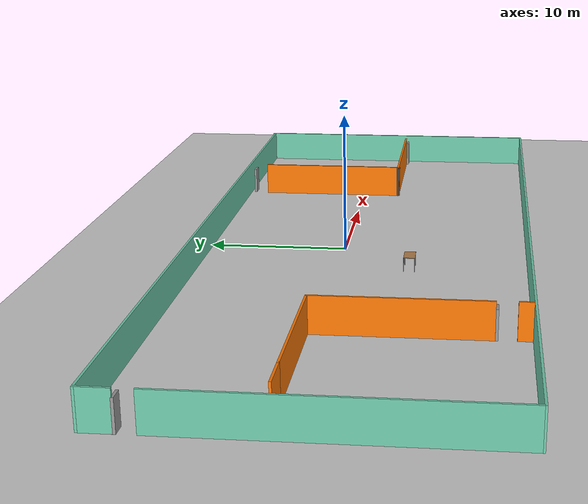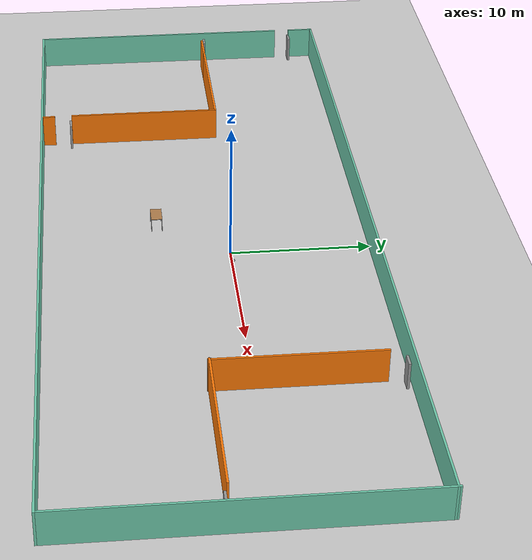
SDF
<sdf version="1.6">
 <world name="default">
  <plugin name="hello" filename="libhello.so"/>
  <light name="sun" type="directional">
   <pose>0 0 10 0 -0 0</pose>
   <diffuse>0.8 0.8 0.8 1</diffuse>
   <specular>0.2 0.2 0.2 1</specular>
   <attenuation>
    <range>1000</range>
    <constant>0.9</constant>
    <linear>0.01</linear>
    <quadratic>0.001</quadratic>
   </attenuation>
   <direction>-0.5 0.1 -0.9</direction>
  </light>
  <model name="ground_plane">
   <static>1</static>
   <link name="link">
    <collision name="collision">
     <geometry><plane><normal>0 0 1</normal><size>100 100</size></plane></geometry>
     <surface>
      <contact><collide_bitmask>65535</collide_bitmask></contact>
      <friction><ode><mu>100</mu><mu2>50</mu2></ode></friction>
     </surface>
    </collision>
    <visual name="visual">
     <cast_shadows>0</cast_shadows>
     <geometry><plane><normal>0 0 1</normal><size>100 100</size></plane></geometry>
     <material>
      <script><uri>file://media/materials/scripts/gazebo.material</uri><name>Gazebo/Grey</name></script>
     </material>
    </visual>
   </link>
  </model>
  <gravity>0 0 -9.8</gravity>
  <magnetic_field>6e-06 2.3e-05 -4.2e-05</magnetic_field>
  <atmosphere type="adiabatic"/>
  <physics name="default_physics" default="0" type="ode">
   <max_step_size>0.001</max_step_size>
   <real_time_factor>1</real_time_factor>
   <real_time_update_rate>1000</real_time_update_rate>
  </physics>
  <scene><ambient>0.4 0.4 0.4 1</ambient><background>0.7 0.7 0.7 1</background><shadows>1</shadows></scene>
  <spherical_coordinates>
   <surface_model>EARTH_WGS84</surface_model>
   <latitude_deg>0</latitude_deg>
   <longitude_deg>0</longitude_deg>
   <elevation>0</elevation>
   <heading_deg>0</heading_deg>
  </spherical_coordinates>
  <model name="Building">
   <pose>-1.11028 -1.8145 0 0 -0 0</pose>
   <link name="Door_0">
    <collision name="Door_0_Collision">
     <geometry><box><size>0.9 0.17 2</size></box></geometry>
     <pose>0 0 1 0 -0 0</pose>
    </collision>
    <visual name="Door_0_Visual">
     <pose>0 0 1 0 -0 0</pose>
     <geometry><box><size>0.9 0.17 2</size></box></geometry>
     <material>
      <script><uri>file://media/materials/scripts/gazebo.material</uri><name>Gazebo/Grey</name></script>
     </material>
    </visual>
    <pose>-28.7575 9.84664 0 0 -0 0</pose>
   </link>
   <link name="Door_1">
    <collision name="Door_1_Collision">
     <geometry><box><size>0.9 0.17 2</size></box></geometry>
     <pose>0 0 1 0 -0 0</pose>
    </collision>
    <visual name="Door_1_Visual">
     <pose>0 0 1 0 -0 0</pose>
     <geometry><box><size>0.9 0.17 2</size></box></geometry>
     <material>
      <script><uri>file://media/materials/scripts/gazebo.material</uri><name>Gazebo/Grey</name></script>
     </material>
    </visual>
    <pose>-15.1147 -9.07776 0 0 -0 0</pose>
   </link>
   <link name="Door_2">
    <collision name="Door_2_Collision">
     <geometry><box><size>0.9 0.17 2</size></box></geometry>
     <pose>0 0 1 0 -0 0</pose>
    </collision>
    <visual name="Door_2_Visual">
     <pose>0 0 1 0 -0 0</pose>
     <geometry><box><size>0.9 0.17 2</size></box></geometry>
     <material>
      <script><uri>file://media/materials/scripts/gazebo.material</uri><name>Gazebo/Grey</name></script>
     </material>
    </visual>
    <pose>-28.5663 2.5444 0 0 -0 0</pose>
   </link>
   <link name="Door_4">
    <collision name="Door_4_Collision">
     <geometry><box><size>0.9 0.17 2</size></box></geometry>
     <pose>0 0 1 0 -0 0</pose>
    </collision>
    <visual name="Door_4_Visual">
     <pose>0 0 1 0 -0 0</pose>
     <geometry><box><size>0.9 0.17 2</size></box></geometry>
     <material>
      <script><uri>file://media/materials/scripts/gazebo.material</uri><name>Gazebo/Grey</name></script>
     </material>
    </visual>
    <pose>28.2667 -1.23216 0 0 -0 0</pose>
   </link>
   <link name="Door_5">
    <collision name="Door_5_Collision">
     <geometry><box><size>0.9 0.17 2</size></box></geometry>
     <pose>0 0 1 0 -0 0</pose>
    </collision>
    <visual name="Door_5_Visual">
     <pose>0 0 1 0 -0 0</pose>
     <geometry><box><size>0.9 0.17 2</size></box></geometry>
     <material>
      <script><uri>file://media/materials/scripts/gazebo.material</uri><name>Gazebo/Grey</name></script>
     </material>
    </visual>
    <pose>16.8813 11.3908 0 0 -0 0</pose>
   </link>
   <link name="Wall_0">
    <collision name="Wall_0_Collision">
     <geometry><box><size>19.8005 0.15 2.5</size></box></geometry>
     <pose>0 0 1.25 0 -0 0</pose>
    </collision>
    <visual name="Wall_0_Visual">
     <pose>0 0 1.25 0 -0 0</pose>
     <geometry><box><size>19.8005 0.15 2.5</size></box></geometry>
     <material>
      <script><uri>file://media/materials/scripts/gazebo.material</uri><name>Gazebo/Grey</name></script>
      <ambient>0.435294 0.796078 0.67451 1</ambient>
     </material>
     <meta><layer>0</layer></meta>
    </visual>
    <pose>-29.1106 -1.17691 0 0 0 -1.5708</pose>
   </link>
   <link name="Wall_1">
    <collision name="Wall_1_Collision">
     <geometry><box><size>58.3767 0.15 2.5</size></box></geometry>
     <pose>0 0 1.25 0 -0 0</pose>
    </collision>
    <visual name="Wall_1_Visual">
     <pose>0 0 1.25 0 -0 0</pose>
     <geometry><box><size>58.3767 0.15 2.5</size></box></geometry>
     <material>
      <script><uri>file://media/materials/scripts/gazebo.material</uri><name>Gazebo/Grey</name></script>
      <ambient>0.435294 0.796078 0.67451 1</ambient>
     </material>
     <meta><layer>0</layer></meta>
    </visual>
    <pose>0 -11.524 0 0 0 -0.013673</pose>
   </link>
   <link name="Wall_12">
    <collision name="Wall_12_Collision">
     <geometry><box><size>2.5 0.15 2.5</size></box></geometry>
     <pose>0 0 1.25 0 -0 0</pose>
    </collision>
    <visual name="Wall_12_Visual">
     <pose>0 0 1.25 0 -0 0</pose>
     <geometry><box><size>2.5 0.15 2.5</size></box></geometry>
     <material>
      <script><uri>file://media/materials/scripts/gazebo.material</uri><name>Gazebo/Grey</name></script>
      <ambient>0.996078 0.47451 0.0196078 1</ambient>
     </material>
     <meta><layer>0</layer></meta>
    </visual>
    <pose>-26.5095 2.28662 0 0 -0 3.14159</pose>
   </link>
   <link name="Wall_14">
    <collision name="Wall_14_Collision">
     <geometry><box><size>0.25 0.15 2.5</size></box></geometry>
     <pose>0 0 1.25 0 -0 0</pose>
    </collision>
    <visual name="Wall_14_Visual">
     <pose>0 0 1.25 0 -0 0</pose>
     <geometry><box><size>0.25 0.15 2.5</size></box></geometry>
     <material>
      <script><uri>file://media/materials/scripts/gazebo.material</uri><name>Gazebo/Grey</name></script>
      <ambient>1 1 1 1</ambient>
     </material>
     <meta><layer>0</layer></meta>
    </visual>
    <pose>16.343 -1.08341 0 0 -0 2.61799</pose>
   </link>
   <link name="Wall_15">
    <collision name="Wall_15_Collision">
     <geometry><box><size>11.5 0.15 2.5</size></box></geometry>
     <pose>0 0 1.25 0 -0 0</pose>
    </collision>
    <visual name="Wall_15_Visual">
     <pose>0 0 1.25 0 -0 0</pose>
     <geometry><box><size>11.5 0.15 2.5</size></box></geometry>
     <material>
      <script><uri>file://media/materials/scripts/gazebo.material</uri><name>Gazebo/Grey</name></script>
      <ambient>0.996078 0.47451 0.0196078 1</ambient>
     </material>
     <meta><layer>0</layer></meta>
    </visual>
    <pose>21.9747 -1.05841 0 0 -0 0</pose>
   </link>
   <link name="Wall_17">
    <collision name="Wall_17_Collision">
     <geometry><box><size>11.5 0.15 2.5</size></box></geometry>
     <pose>0 0 1.25 0 -0 0</pose>
    </collision>
    <visual name="Wall_17_Visual">
     <pose>0 0 1.25 0 -0 0</pose>
     <geometry><box><size>11.5 0.15 2.5</size></box></geometry>
     <material>
      <script><uri>file://media/materials/scripts/gazebo.material</uri><name>Gazebo/Grey</name></script>
      <ambient>0.996078 0.47451 0.0196078 1</ambient>
     </material>
     <meta><layer>0</layer></meta>
    </visual>
    <pose>16.3863 4.56659 0 0 -0 1.5708</pose>
   </link>
   <link name="Wall_2">
    <collision name="Wall_2_Collision">
     <geometry><box><size>23.8713 0.15 2.5</size></box></geometry>
     <pose>0 0 1.25 0 -0 0</pose>
    </collision>
    <visual name="Wall_2_Visual">
     <pose>0 0 1.25 0 -0 0</pose>
     <geometry><box><size>23.8713 0.15 2.5</size></box></geometry>
     <material>
      <script><uri>file://media/materials/scripts/gazebo.material</uri><name>Gazebo/Grey</name></script>
      <ambient>0.435294 0.796078 0.67451 1</ambient>
     </material>
     <meta><layer>0</layer></meta>
    </visual>
    <pose>29.1106 0.062386 0 0 -0 1.5708</pose>
   </link>
   <link name="Wall_3">
    <collision name="Wall_3_Collision">
     <geometry><box><size>58.3714 0.15 2.5</size></box></geometry>
     <pose>0 0 1.25 0 -0 0</pose>
    </collision>
    <visual name="Wall_3_Visual">
     <pose>0 0 1.25 0 -0 0</pose>
     <geometry><box><size>58.3714 0.15 2.5</size></box></geometry>
     <material>
      <script><uri>file://media/materials/scripts/gazebo.material</uri><name>Gazebo/Grey</name></script>
      <ambient>0.435294 0.796078 0.67451 1</ambient>
     </material>
     <meta><layer>0</layer></meta>
    </visual>
    <pose>0 11.7993 0 0 -0 3.14159</pose>
   </link>
   <link name="Wall_4">
    <collision name="Wall_4_Collision">
     <geometry><box><size>2 0.15 2.5</size></box></geometry>
     <pose>0 0 1.25 0 -0 0</pose>
    </collision>
    <visual name="Wall_4_Visual">
     <pose>0 0 1.25 0 -0 0</pose>
     <geometry><box><size>2 0.15 2.5</size></box></geometry>
     <material>
      <script><uri>file://media/materials/scripts/gazebo.material</uri><name>Gazebo/Grey</name></script>
      <ambient>0.435294 0.796078 0.67451 1</ambient>
     </material>
     <meta><layer>0</layer></meta>
    </visual>
    <pose>-29.1106 10.8743 0 0 0 -1.5708</pose>
   </link>
   <link name="Wall_6">
    <collision name="Wall_6_Collision">
     <geometry><box><size>10 0.15 2.5</size></box></geometry>
     <pose>0 0 1.25 0 -0 0</pose>
    </collision>
    <visual name="Wall_6_Visual">
     <pose>0 0 1.25 0 -0 0</pose>
     <geometry><box><size>10 0.15 2.5</size></box></geometry>
     <material>
      <script><uri>file://media/materials/scripts/gazebo.material</uri><name>Gazebo/Grey</name></script>
      <ambient>0.996078 0.47451 0.0196078 1</ambient>
     </material>
     <meta><layer>0</layer></meta>
    </visual>
    <pose>-20.4095 2.28662 0 0 -0 0</pose>
   </link>
   <link name="Wall_7">
    <collision name="Wall_7_Collision">
     <geometry><box><size>11.3585 0.15 2.5</size></box></geometry>
     <pose>0 0 1.25 0 -0 0</pose>
    </collision>
    <visual name="Wall_7_Visual">
     <pose>0 0 1.25 0 -0 0</pose>
     <geometry><box><size>11.3585 0.15 2.5</size></box></geometry>
     <material>
      <script><uri>file://media/materials/scripts/gazebo.material</uri><name>Gazebo/Grey</name></script>
      <ambient>0.996078 0.47451 0.0196078 1</ambient>
     </material>
     <meta><layer>0</layer></meta>
    </visual>
    <pose>-15.4845 -3.31763 0 0 0 -1.5708</pose>
   </link>
   <link name="Wall_9">
    <collision name="Wall_9_Collision">
     <geometry><box><size>1 0.15 2.5</size></box></geometry>
     <pose>0 0 1.25 0 -0 0</pose>
    </collision>
    <visual name="Wall_9_Visual">
     <pose>0 0 1.25 0 -0 0</pose>
     <geometry><box><size>1 0.15 2.5</size></box></geometry>
     <material>
      <script><uri>file://media/materials/scripts/gazebo.material</uri><name>Gazebo/Grey</name></script>
      <ambient>0.996078 0.47451 0.0196078 1</ambient>
     </material>
     <meta><layer>0</layer></meta>
    </visual>
    <pose>-15.4375 -10.805 0 0 -0 1.5708</pose>
   </link>
   <static>1</static>
  </model>
  <model name="table">
   <static>0</static>
   <link name="link">
    <collision name="surface">
     <pose>0 0 1 0 -0 0</pose>
     <geometry><box><size>1.5 0.8 0.03</size></box></geometry>
     <surface><friction><ode><mu>0.6</mu><mu2>0.6</mu2></ode></friction></surface>
    </collision>
    <visual name="visual1">
     <pose>0 0 1 0 -0 0</pose>
     <geometry><box><size>1.4 0.8 0.04</size></box></geometry>
     <material>
      <script><uri>file://media/materials/scripts/gazebo.material</uri><name>Gazebo/Wood</name></script>
     </material>
    </visual>
    <collision name="front_left_leg">
     <pose>0.68 0.38 0.5 0 -0 0</pose>
     <geometry><cylinder><radius>0.02</radius><length>1</length></cylinder></geometry>
    </collision>
    <visual name="front_left_leg">
     <pose>0.68 0.38 0.5 0 -0 0</pose>
     <geometry><cylinder><radius>0.02</radius><length>1</length></cylinder></geometry>
     <material>
      <script><uri>file://media/materials/scripts/gazebo.material</uri><name>Gazebo/Grey</name></script>
     </material>
    </visual>
    <collision name="front_right_leg">
     <pose>0.68 -0.38 0.5 0 -0 0</pose>
     <geometry><cylinder><radius>0.02</radius><length>1</length></cylinder></geometry>
    </collision>
    <visual name="front_right_leg">
     <pose>0.68 -0.38 0.5 0 -0 0</pose>
     <geometry><cylinder><radius>0.02</radius><length>1</length></cylinder></geometry>
     <material>
      <script><uri>file://media/materials/scripts/gazebo.material</uri><name>Gazebo/Grey</name></script>
     </material>
    </visual>
    <collision name="back_right_leg">
     <pose>-0.68 -0.38 0.5 0 -0 0</pose>
     <geometry><cylinder><radius>0.02</radius><length>1</length></cylinder></geometry>
    </collision>
    <visual name="back_right_leg">
     <pose>-0.68 -0.38 0.5 0 -0 0</pose>
     <geometry><cylinder><radius>0.02</radius><length>1</length></cylinder></geometry>
     <material>
      <script><uri>file://media/materials/scripts/gazebo.material</uri><name>Gazebo/Grey</name></script>
     </material>
    </visual>
    <collision name="back_left_leg">
     <pose>-0.68 0.38 0.5 0 -0 0</pose>
     <geometry><cylinder><radius>0.02</radius><length>1</length></cylinder></geometry>
    </collision>
    <visual name="back_left_leg">
     <pose>-0.68 0.38 0.5 0 -0 0</pose>
     <geometry><cylinder><radius>0.02</radius><length>1</length></cylinder></geometry>
     <material>
      <script><uri>file://media/materials/scripts/gazebo.material</uri><name>Gazebo/Grey</name></script>
     </material>
    </visual>
    <inertial>
     <inertia><ixx>1</ixx><ixy>0</ixy><ixz>0</ixz><iyy>1</iyy><iyz>0</iyz><izz>1</izz></inertia>
     <mass>1</mass>
    </inertial>
   </link>
   <pose>-4 -5 -2e-06 0 -0 0</pose>
  </model>
  <model name="my_ball">
   <link name="link_0">
    <inertial>
     <mass>1</mass>
     <inertia><ixx>0.1</ixx><ixy>0</ixy><ixz>0</ixz><iyy>0.1</iyy><iyz>0</iyz><izz>0.1</izz></inertia>
    </inertial>
    <visual name="visual">
     <geometry><sphere><radius>0.1</radius></sphere></geometry>
     <material>
      <lighting>1</lighting>
      <script><uri>file://media/materials/scripts/gazebo.material</uri><name>Gazebo/Grey</name></script>
      <shader type="pixel"><normal_map>__default__</normal_map></shader>
      <ambient>1 1 1 1</ambient>
      <diffuse>1 1 1 1</diffuse>
      <specular>1 1 1 1</specular>
      <emissive>1 1 1 1</emissive>
     </material>
    </visual>
    <collision name="collision">
     <geometry><sphere><radius>0.1</radius></sphere></geometry>
     <surface>
      <friction>
       <ode><mu>1</mu><mu2>1</mu2><fdir1>0 0 0</fdir1><slip1>0</slip1><slip2>0</slip2></ode>
       <torsional>
        <coefficient>1</coefficient>
        <patch_radius>0</patch_radius>
        <surface_radius>0</surface_radius>
        <use_patch_radius>1</use_patch_radius>
        <ode><slip>0</slip></ode>
       </torsional>
      </friction>
      <bounce><restitution_coefficient>0</restitution_coefficient><threshold>1e+06</threshold></bounce>
      <contact>
       <collide_without_contact>0</collide_without_contact>
       <collide_without_contact_bitmask>1</collide_without_contact_bitmask>
       <collide_bitmask>1</collide_bitmask>
       <ode>
        <soft_cfm>0</soft_cfm>
        <soft_erp>0.2</soft_erp>
        <kp>1e+13</kp>
        <kd>1</kd>
        <max_vel>0.01</max_vel>
        <min_depth>0</min_depth>
       </ode>
       <bullet>
        <split_impulse>1</split_impulse>
        <split_impulse_penetration_threshold>-0.01</split_impulse_penetration_threshold>
        <soft_cfm>0</soft_cfm>
        <soft_erp>0.2</soft_erp>
        <kp>1e+13</kp>
        <kd>1</kd>
       </bullet>
      </contact>
     </surface>
    </collision>
   </link>
   <static>0</static>
   <pose>1.07783 0.124801 0.1 0 -0 0</pose>
  </model>
 </world>
</sdf>
